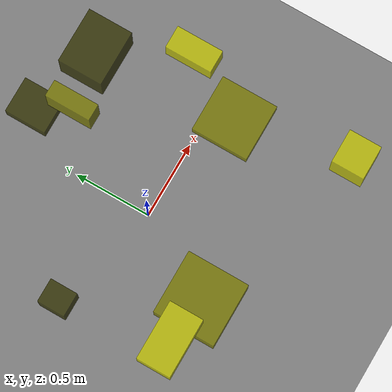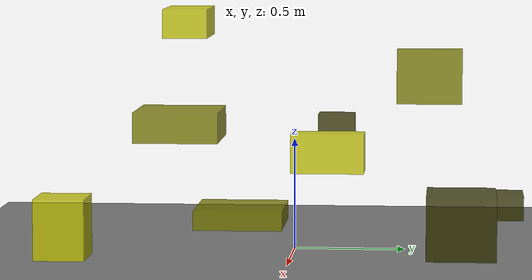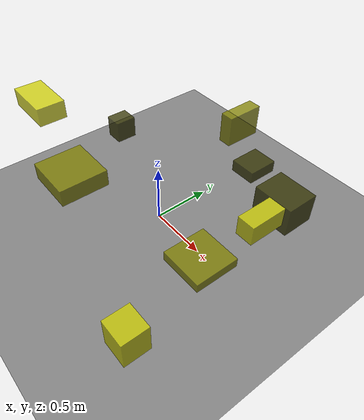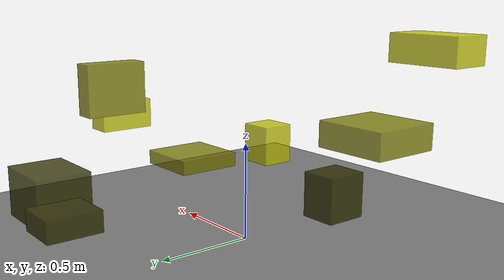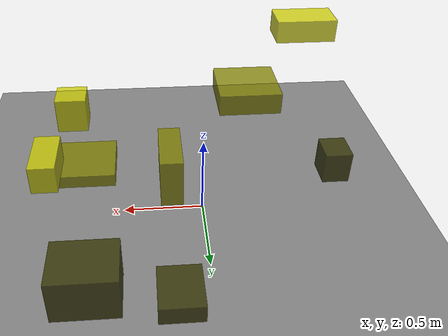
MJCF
<?xml version="1.0"?>
<mujoco model="obstacle_scene">
  <compiler angle="radian" coordinate="local"/>
  <option timestep="0.001" gravity="0 0 -9.81"/>

  <asset>
    <material name="obstacle_mat" rgba="0.8 0.8 0.0 0.8"/>
    <material name="ground_mat" rgba="0.5 0.5 0.5 1"/>
  </asset>

  <worldbody>
    <!-- Ground plane -->
    <geom name="ground" type="plane" size="3 3 0.1" material="ground_mat"/>

    <!-- Obstacles -->
    <body name="obstacle_0" pos="-0.748220 0.154976 0.450747">
      <geom name="obs_0" type="box" size="0.075774 0.087801 0.092963" rgba="0.2 0.2 0.0 0.8"/>
    </body>
    <body name="obstacle_1" pos="-0.346567 -0.565167 0.527738">
      <geom name="obs_1" type="box" size="0.202129 0.197903 0.070723" rgba="0.5 0.5 0.0 0.8"/>
    </body>
    <body name="obstacle_2" pos="0.885761 -0.916460 0.219176">
      <geom name="obs_2" type="box" size="0.110233 0.107022 0.128750" rgba="0.8 0.8 0.0 0.8"/>
    </body>
    <body name="obstacle_3" pos="0.198880 0.892561 0.233769">
      <geom name="obs_3" type="box" size="0.116524 0.135283 0.053633" rgba="0.2 0.2 0.0 0.8"/>
    </body>
    <body name="obstacle_4" pos="0.226474 0.611727 0.807140">
      <geom name="obs_4" type="box" size="0.051894 0.143327 0.118983" rgba="0.5 0.5 0.0 0.8"/>
    </body>
    <body name="obstacle_5" pos="0.897167 0.199352 0.544301">
      <geom name="obs_5" type="box" size="0.072080 0.151378 0.081354" rgba="0.8 0.8 0.0 0.8"/>
    </body>
    <body name="obstacle_6" pos="0.676272 0.753808 0.216167">
      <geom name="obs_6" type="box" size="0.182568 0.147227 0.133547" rgba="0.2 0.2 0.0 0.8"/>
    </body>
    <body name="obstacle_7" pos="0.726614 -0.177576 0.254702">
      <geom name="obs_7" type="box" size="0.184684 0.185611 0.040653" rgba="0.5 0.5 0.0 0.8"/>
    </body>
    <body name="obstacle_8" pos="-0.679704 -0.558610 0.988404">
      <geom name="obs_8" type="box" size="0.183158 0.105865 0.068982" rgba="0.8 0.8 0.0 0.8"/>
    </body>
  </worldbody>
</mujoco>
